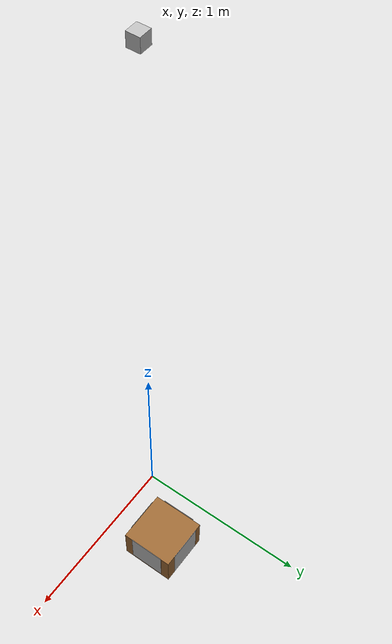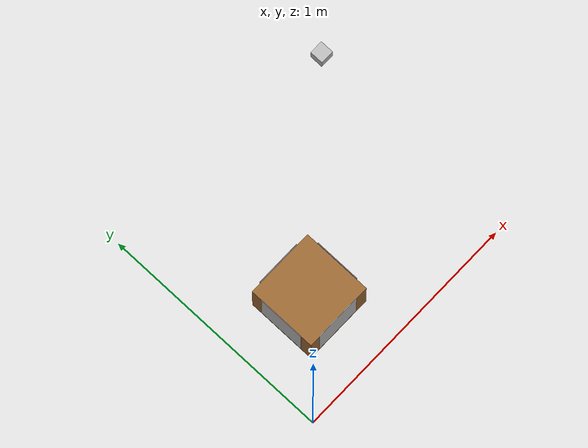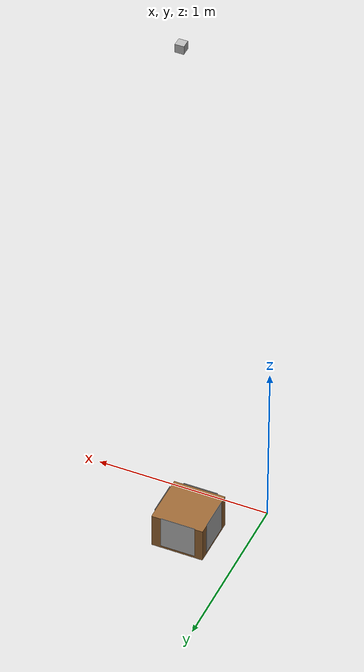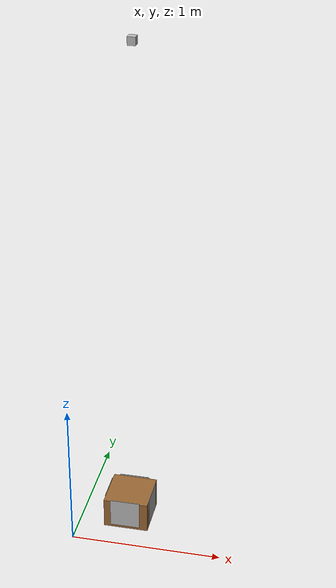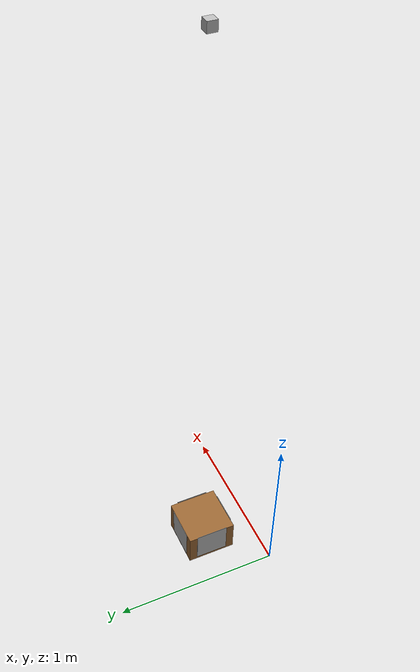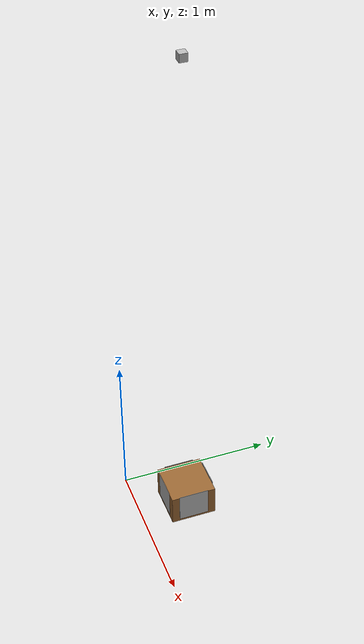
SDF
<sdf version="1.5">
 <world name="attachment">
  <physics name="default_physics" default="0" type="ode">
   <max_step_size>0.001</max_step_size>
   <real_time_factor>1</real_time_factor>
   <real_time_update_rate>1000</real_time_update_rate>
  </physics>
  <scene><ambient>0.4 0.4 0.4 1</ambient><background>0.7 0.7 0.7 1</background><shadows>1</shadows></scene>
  <light name="sun" type="directional">
   <pose>0 0 10 0 -0 0</pose>
   <diffuse>0.8 0.8 0.8 1</diffuse>
   <specular>0.1 0.1 0.1 1</specular>
   <attenuation>
    <range>1000</range>
    <constant>0.9</constant>
    <linear>0.01</linear>
    <quadratic>0.001</quadratic>
   </attenuation>
   <direction>-0.5 0.5 -1</direction>
  </light>
  <include>
   <uri>model://Apriltag36_11_00000</uri>
   <pose>0.477 0.325 0.112 0 1.57 0</pose>
   <scale>0.04 0.04 0.01</scale>
  </include>
  <include>
   <uri>model://Apriltag36_11_00001</uri>
   <pose>0.174 0.325 0.112 0 1.57 0</pose>
   <scale>0.04 0.04 0.01</scale>
  </include>
  <include>
   <uri>model://Apriltag36_11_00002</uri>
   <pose>0.320 0.175 0.112 1.57 1.57 0</pose>
   <scale>0.04 0.04 0.01</scale>
  </include>
  <include>
   <uri>model://Apriltag36_11_00003</uri>
   <pose>0.320 0.478 0.112 1.57 1.57 0</pose>
   <scale>0.04 0.04 0.01</scale>
  </include>
  <model name="brown_box">
   <pose>0.325 0.325 0.1 0 0 0</pose>
   <static>false</static>
   <link name="link">
    <collision name="collision"><geometry><box><size>0.3 0.3 0.21</size></box></geometry></collision>
    <visual name="visual">
     <geometry><box><size>0.3 0.3 0.21</size></box></geometry>
     <material>
      <ambient>0.6 0.4 0.2 1</ambient>
      <diffuse>0.6 0.4 0.2 1</diffuse>
      <specular>0.1 0.1 0.1 1</specular>
     </material>
    </visual>
   </link>
  </model>
  <model name="camera">
   <pose>0.375 0.32 3.33 3.14 1.57 1.57</pose>
   <static>true</static>
   <link name="link">
    <visual name="visual"><geometry><box><size>0.05 0.05 0.05</size></box></geometry></visual>
    <sensor name="camera_sensor" type="camera">
     <camera>
      <horizontal_fov>1.047</horizontal_fov>
      <image><width>640</width><height>480</height></image>
      <clip><near>0.1</near><far>100</far></clip>
     </camera>
     <always_on>1</always_on>
     <update_rate>30</update_rate>
     <visualize>true</visualize>
     <plugin name="camera_controller" filename="libgazebo_ros_camera.so">
      <alwaysOn>true</alwaysOn>
      <updateRate>30.0</updateRate>
      <cameraName>overhead_camera</cameraName>
      <imageTopicName>/camera/image_raw</imageTopicName>
      <cameraInfoTopicName>/camera/camera_info</cameraInfoTopicName>
      <frameName>camera_link</frameName>
      <hackBaseline>0.07</hackBaseline>
      <distortionK1>0.0</distortionK1>
      <distortionK2>0.0</distortionK2>
      <distortionK3>0.0</distortionK3>
      <distortionT1>0.0</distortionT1>
      <distortionT2>0.0</distortionT2>
     </plugin>
    </sensor>
   </link>
  </model>
  <gravity>0 0 -9.8</gravity>
  <magnetic_field>6e-06 2.3e-05 -4.2e-05</magnetic_field>
  <atmosphere type="adiabatic"/>
  <spherical_coordinates>
   <surface_model>EARTH_WGS84</surface_model>
   <latitude_deg>0</latitude_deg>
   <longitude_deg>0</longitude_deg>
   <elevation>0</elevation>
   <heading_deg>0</heading_deg>
  </spherical_coordinates>
 </world>
</sdf>

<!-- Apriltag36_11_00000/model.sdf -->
<sdf version='1.6'>
  <model name='Apriltag36_11_00000'>
    <link name='main'>
    <pose frame=''>0 0 0 0 0 0</pose>
      <visual name='main_Visual'>
        <geometry>
          <box>
            <size>0.2 0.2 0.002</size>
          </box>
        </geometry>
           <material>
          <script>
            <uri>model://Apriltag36_11_00000/materials/scripts</uri>
            <uri>model://Apriltag36_11_00000/materials/textures</uri>
            <name>Apriltag36_11_00000</name>
          </script>
        </material>
      </visual>
     </link>
    <static>1</static>
  </model>
</sdf>

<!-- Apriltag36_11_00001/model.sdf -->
<sdf version='1.6'>
  <model name='Apriltag36_11_00001'>
    <link name='main'>
    <pose frame=''>0 0 0 0 0 0</pose>
      <visual name='main_Visual'>
        <geometry>
          <box>
          <size>0.2 0.2 0.002</size>
          </box>
        </geometry>
           <material>
          <script>
            <uri>model://Apriltag36_11_00001/materials/scripts</uri>
            <uri>model://Apriltag36_11_00001/materials/textures</uri>
            <name>Apriltag36_11_00001</name>
          </script>
        </material>
      </visual>
     </link>
    <static>1</static>
  </model>
</sdf>

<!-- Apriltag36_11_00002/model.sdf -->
<sdf version='1.6'>
  <model name='Apriltag36_11_00002'>
    <link name='main'>
    <pose frame=''>0 0 0 0 0 0</pose>
      <visual name='main_Visual'>
        <geometry>
          <box>
          <size>0.2 0.2 0.002</size>
          </box>
        </geometry>
           <material>
          <script>
            <uri>model://Apriltag36_11_00002/materials/scripts</uri>
            <uri>model://Apriltag36_11_00002/materials/textures</uri>
            <name>Apriltag36_11_00002</name>
          </script>
        </material>
      </visual>
     </link>
    <static>1</static>
  </model>
</sdf>

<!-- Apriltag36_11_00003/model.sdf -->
<sdf version='1.6'>
  <model name='Apriltag36_11_00003'>
    <link name='main'>
    <pose frame=''>0 0 0 0 0 0</pose>
      <visual name='main_Visual'>
        <geometry>
          <box>
          <size>0.2 0.2 0.002</size>
          </box>
        </geometry>
           <material>
          <script>
            <uri>model://Apriltag36_11_00003/materials/scripts</uri>
            <uri>model://Apriltag36_11_00003/materials/textures</uri>
            <name>Apriltag36_11_00003</name>
          </script>
        </material>
      </visual>
     </link>
    <static>1</static>
  </model>
</sdf>
